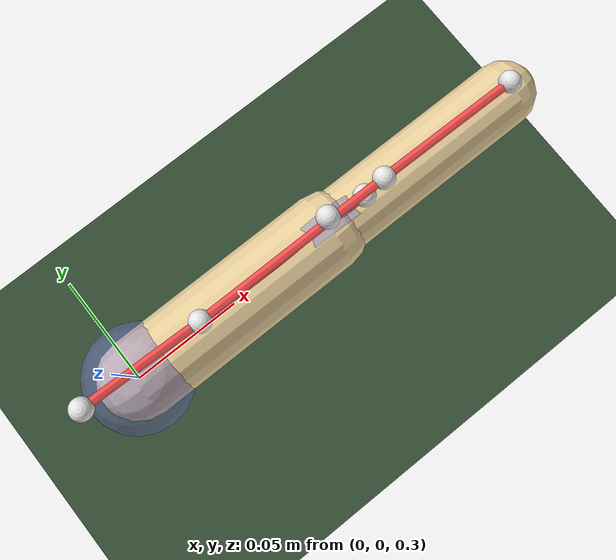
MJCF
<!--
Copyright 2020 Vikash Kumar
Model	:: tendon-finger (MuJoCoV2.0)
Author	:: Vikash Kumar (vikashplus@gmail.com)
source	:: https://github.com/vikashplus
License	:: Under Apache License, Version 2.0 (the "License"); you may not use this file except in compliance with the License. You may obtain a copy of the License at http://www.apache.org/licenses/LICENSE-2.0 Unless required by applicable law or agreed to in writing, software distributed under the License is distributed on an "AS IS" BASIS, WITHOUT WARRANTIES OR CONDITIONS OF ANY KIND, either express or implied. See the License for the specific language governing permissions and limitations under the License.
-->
<mujoco model="tendon-finger">

	<default>
		<geom rgba=".9 .8 .6 1" size="0.01"/>
		<site type="sphere" rgba=".9 .9 .9 1" size="0.005"/>
		<joint type="hinge" axis="0 1 0" damping=".1" armature="0.01" limited="true" range="0 60" solimplimit="0.95 0.95 0.1"/>
		<default class="muscle">
			<muscle ctrllimited="true" ctrlrange="0 1" scale="10000"></muscle>
		</default>
	</default>

	<visual>
		<headlight diffuse=".9 .9 .9"/>
	</visual>

	<worldbody>
		<geom type="plane" size="1 1 1" rgba=".2 .3 .2 1"/>

		<!-- BASE -->
		<site name="bs3" pos="-0.02 0.00 0.33"/>

		<!-- link -->
		<body name="proximal">
			<geom type="capsule" fromto="0 0 0.3 0.1 0 0.3" size=".018"/>
			<geom name="pg1" type="sphere" pos="0.0 0.0 0.3" size="0.024" rgba=".5 .5 .9 .4"/>
			<joint name="IFmcp" pos="0 0 0.3" axis="0 1 0" range="-25 60"/>
			<site name="ps3" pos="0.035 0.00 0.32"/>

			<body name="middle">
				<geom type="capsule" fromto="0.1 0 0.3 0.2 0 0.3" size=".015"/>
				<geom name="mg2" type="cylinder" fromto="0.1 0.005 0.3 0.1 -0.005 0.3"
					size="0.020" rgba=".5 .5 .9 .4"/>
				<joint name="IFpip" pos="0.1 0 0.3"/>
				<site name="ms4" pos="0.12 0 0.315"/>
				<site name="ms5" pos="0.13 0 0.32"/>
				<site name="ms5a" pos="0.2 0 0.315"/>
				<site name="side2" pos="0.1 0 0.33"/>
			</body>

		</body>
	</worldbody>

	<tendon>
		<spatial name="extn" width="0.002" rgba=".95 .3 .3 1" limited="true" range="0 0.33">
			<site site="bs3"/>
			<geom geom="pg1"/>
			<site site="ps3"/>

			<pulley divisor="2"/>
			<site site="ps3"/>
			<geom geom="mg2" sidesite="side2"/>
			<site site="ms4"/>

			<pulley divisor="2"/>
			<site site="ps3"/>
			<geom geom="mg2" sidesite="side2"/>
			<site site="ms5"/>
			<site site="ms5a"/>

		</spatial>
	</tendon>
</mujoco>
